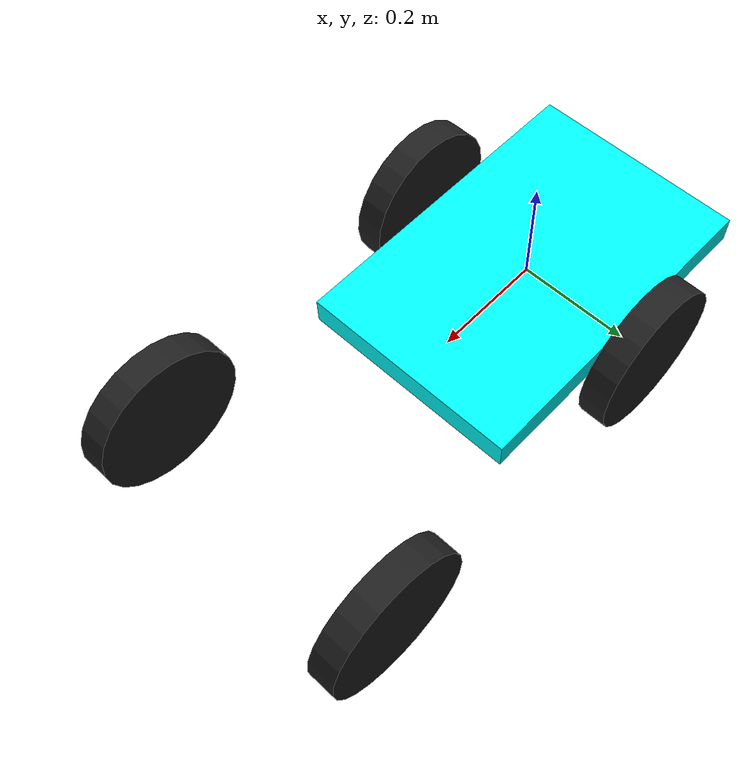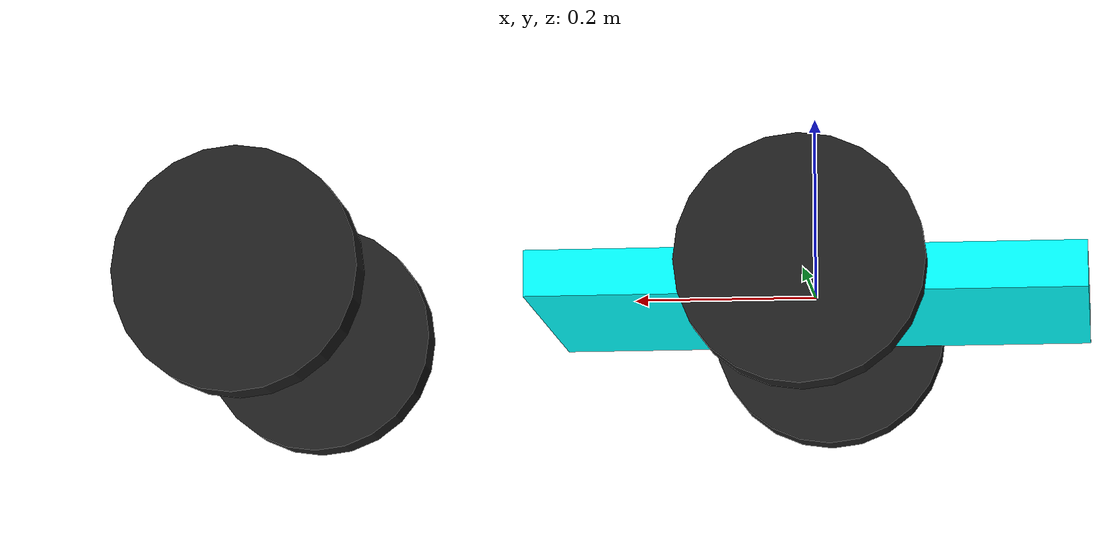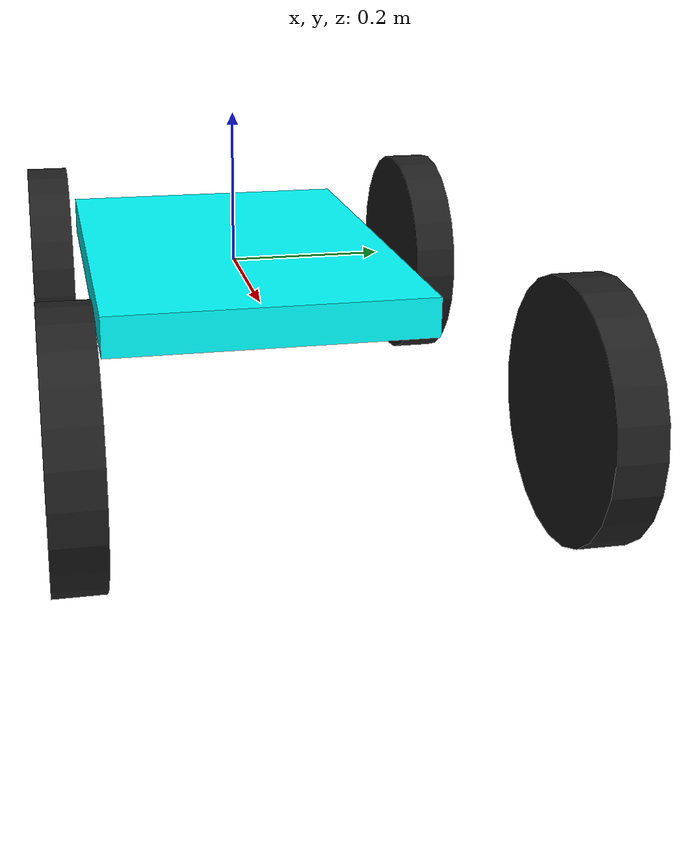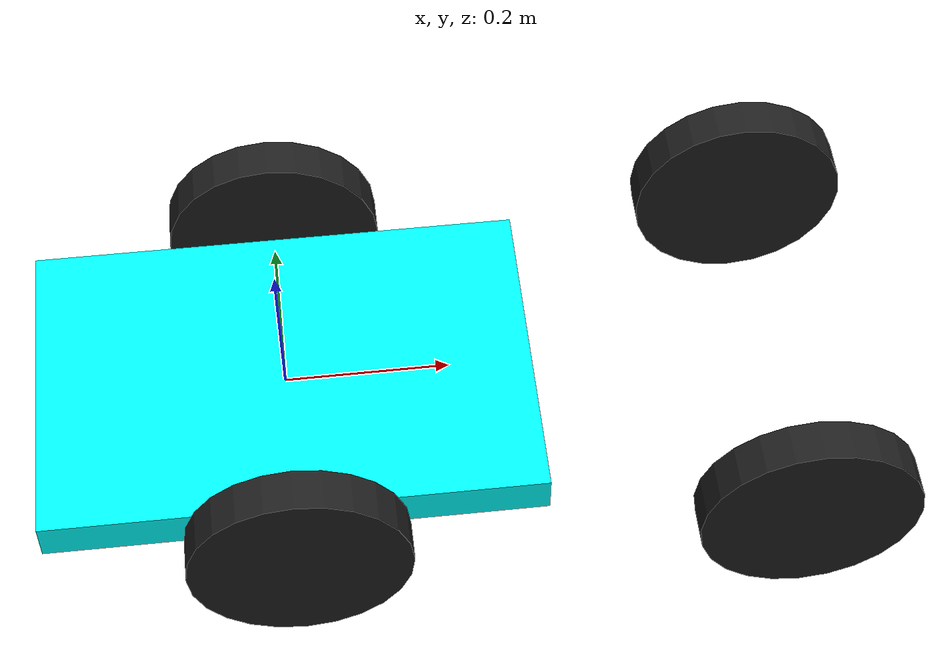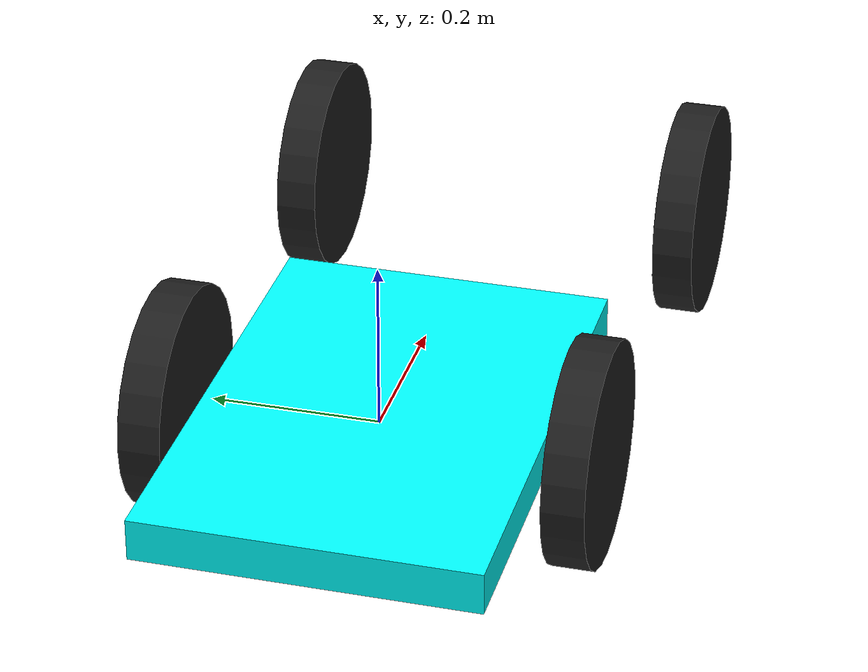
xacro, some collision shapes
<?xml version="1.0"?>
<robot xmlns:xacro="http://www.ros.org/wiki/xacro" name="whill_modelc" >

    <link name="base_link">
    </link>

    <link name="base_floor">
        <visual>
            <geometry>
                <mesh filename="package://ros_whill/whill_body.stl"/>
            </geometry>
            <material name="light_blue">
                <color rgba="0 1.0 1.0 1.0"/>
            </material>
        </visual>

        <collision>
            <geometry>
                <box size="0.600 0.400 0.050"/>
            </geometry>
        </collision>

        <inertial>
            <origin xyz="0 0 0" rpy="0 0 0" />
            <mass value="40" />
            <inertia ixx="1.0"  ixy="0.0"   ixz="0.0"
                                iyy="1.0"   iyz="0.0"
                                            izz="1.0" />
        </inertial>
    </link>

    <joint name="base_body_joint" type="fixed">
        <parent link="base_link" />
        <child link="base_floor" />
        <origin xyz="0.0 0 0.0" rpy="0 0 0"/>
    </joint>

    <link name="left_wheel_link">
        <visual>
            <geometry>
                <cylinder length="0.05" radius="0.1325"/>
            </geometry>
            <origin xyz="0 0 0" rpy="0 0 0" />
            <material name="black" />
        </visual>

        <collision>
            <geometry>
                <cylinder length="0.05" radius="0.1325"/>
            </geometry>
        </collision>

        <inertial>
            <origin xyz="0 0 0"/>
            <mass value="0.500"/>
            <inertia ixx="0.0013541667" ixy="0" ixz="0" iyy="0.0013541667" iyz="0" izz="0.0025"/>
        </inertial>
    </link>

    <joint name="leftWheel" type="continuous">
        <parent link="base_floor" />
        <child link="left_wheel_link" />
        <origin xyz="0 0.245 0" rpy="-1.57 0 0" />
        <axis xyz="0 0 1" />
    </joint>

    <link name="right_wheel_link">
        <collision>
            <origin xyz="0 0 0" rpy="0 0 0" />
            <geometry>
                <cylinder length="0.05" radius="0.1325"/>
            </geometry>
        </collision>
        <visual>
            <origin xyz="0 0 0" rpy="0 0 0" />
            <geometry>
                <cylinder length="0.05" radius="0.1325"/>
            </geometry>
            <material name="black" />
        </visual>
        <inertial>
            <origin xyz="0 0 0"/>
            <mass value="0.500"/>
            <inertia ixx="0.0013541667" ixy="0" ixz="0" iyy="0.0013541667" iyz="0" izz="0.0025"/>
        </inertial>
    </link>

    <joint name="rightWheel" type="continuous">
        <parent link="base_floor" />
        <child link="right_wheel_link" />
        <origin xyz="0 -0.245 0" rpy="1.57 0 0" />
        <axis xyz="0 0 1" />
    </joint>

    <link name="frontwheel_left">
        <collision>
            <geometry>
                <cylinder length="0.05" radius="0.1325"/>
            </geometry>
        </collision>

        <visual>
            <geometry>
                <cylinder length="0.05" radius="0.1325"/>
            </geometry>
            <material name="black" />
        </visual>

        <inertial>
            <origin xyz="0 0 0" rpy="0 0 0" />
            <mass value="1.0" />
            <inertia ixx="1.0"  ixy="0.0"   ixz="0.0"
                                iyy="1.0"   iyz="0.0"
                                            izz="1.0" />
        </inertial>
    </link>

    <joint name="frontwheel_left_joint" type="fixed">
        <parent link="base_floor" />
        <child link="frontwheel_left" />
        <origin xyz="0.6 -0.245 0" rpy="1.57 0 0" />
        <axis xyz="0 0 1" />
    </joint>

    <link name="frontwheel_right">
        <collision>
            <geometry>
                <cylinder length="0.05" radius="0.1325"/>
            </geometry>
        </collision>

        <visual>
            <geometry>
                <cylinder length="0.05" radius="0.1325"/>
            </geometry>
            <material name="black" />
        </visual>

        <inertial>
            <origin xyz="0 0 0" rpy="0 0 0" />
            <mass value="1.0" />
            <inertia ixx="1.0"  ixy="0.0"   ixz="0.0"
                                iyy="1.0"   iyz="0.0"
                                            izz="1.0" />
        </inertial>
    </link>

    <joint name="frontwheel_right_joint" type="fixed">
        <parent link="base_floor" />
        <child link="frontwheel_right"/>
        <origin xyz="0.6 0.245 0" rpy="1.57 0 0" />
        <axis xyz="0 0 -1" />
    </joint>

    <!-- ===============  Transmission =============== -->

    <!-- For Gazebo -->
</robot>
